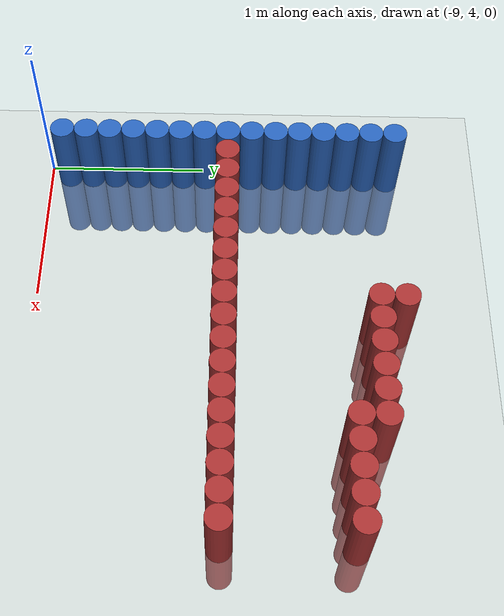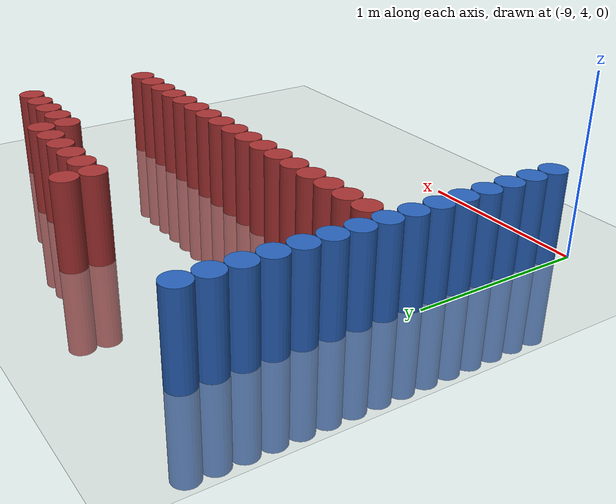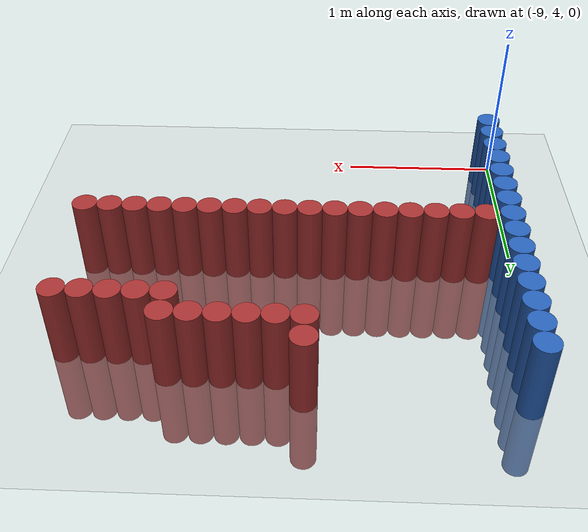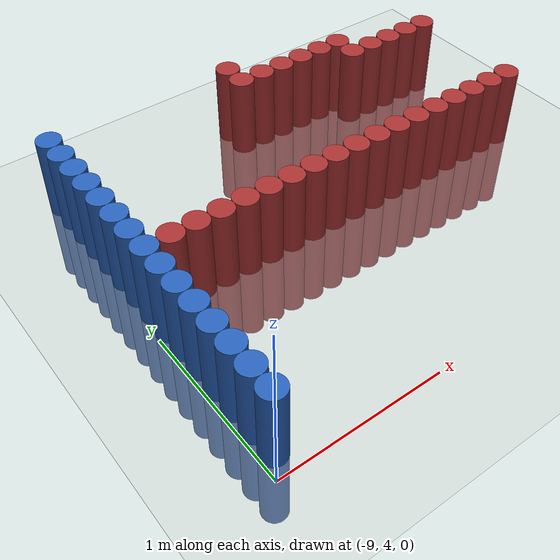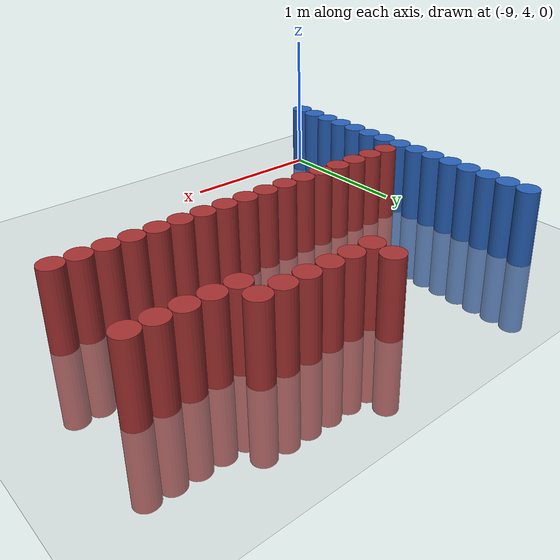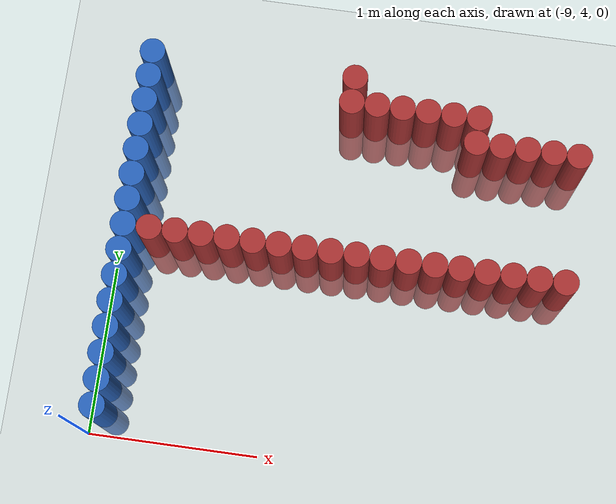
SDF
<sdf version="1.6">
 <world name="default">
  <model name="ground_plane">
   <static>1</static>
   <link name="link">
    <collision name="collision">
     <geometry><plane><normal>0 0 1</normal><size>100 100</size></plane></geometry>
     <surface><friction><ode><mu>100</mu><mu2>50</mu2></ode></friction></surface>
    </collision>
    <visual name="visual">
     <cast_shadows>0</cast_shadows>
     <geometry><plane><normal>0 0 1</normal><size>100 100</size></plane></geometry>
     <material>
      <script><uri>file://media/materials/scripts/gazebo.material</uri><name>Gazebo/Grey</name></script>
     </material>
    </visual>
   </link>
  </model>
  <model name="unit_cylinder_112">
   <static>1</static>
   <pose>-8.925000 4.125000 0.000000 0.000000 0.000000 0.000000</pose>
   <link name="link">
    <inertial>
     <mass>1</mass>
     <inertia><ixx>0.145833</ixx><ixy>0</ixy><ixz>0</ixz><iyy>0.145833</iyy><iyz>0</iyz><izz>0.125</izz></inertia>
    </inertial>
    <collision name="collision">
     <geometry><cylinder><radius>0.075000</radius><length>1</length></cylinder></geometry>
    </collision>
    <visual name="visual">
     <geometry><cylinder><radius>0.075000</radius><length>1</length></cylinder></geometry>
     <material>
      <ambient>0.152000 0.379000 0.720000 1</ambient>
      <diffuse>0.152000 0.379000 0.720000 1</diffuse>
     </material>
     <material>
      <script><name>Gazebo/Grey</name><uri>file://media/materials/scripts/gazebo.material</uri></script>
     </material>
    </visual>
   </link>
  </model>
  <model name="unit_cylinder_114">
   <static>1</static>
   <pose>-8.925000 4.275000 0.000000 0.000000 0.000000 0.000000</pose>
   <link name="link">
    <inertial>
     <mass>1</mass>
     <inertia><ixx>0.145833</ixx><ixy>0</ixy><ixz>0</ixz><iyy>0.145833</iyy><iyz>0</iyz><izz>0.125</izz></inertia>
    </inertial>
    <collision name="collision">
     <geometry><cylinder><radius>0.075000</radius><length>1</length></cylinder></geometry>
    </collision>
    <visual name="visual">
     <geometry><cylinder><radius>0.075000</radius><length>1</length></cylinder></geometry>
     <material>
      <ambient>0.152000 0.379000 0.720000 1</ambient>
      <diffuse>0.152000 0.379000 0.720000 1</diffuse>
     </material>
     <material>
      <script><name>Gazebo/Grey</name><uri>file://media/materials/scripts/gazebo.material</uri></script>
     </material>
    </visual>
   </link>
  </model>
  <model name="unit_cylinder_116">
   <static>1</static>
   <pose>-8.925000 4.425000 0.000000 0.000000 0.000000 0.000000</pose>
   <link name="link">
    <inertial>
     <mass>1</mass>
     <inertia><ixx>0.145833</ixx><ixy>0</ixy><ixz>0</ixz><iyy>0.145833</iyy><iyz>0</iyz><izz>0.125</izz></inertia>
    </inertial>
    <collision name="collision">
     <geometry><cylinder><radius>0.075000</radius><length>1</length></cylinder></geometry>
    </collision>
    <visual name="visual">
     <geometry><cylinder><radius>0.075000</radius><length>1</length></cylinder></geometry>
     <material>
      <ambient>0.152000 0.379000 0.720000 1</ambient>
      <diffuse>0.152000 0.379000 0.720000 1</diffuse>
     </material>
     <material>
      <script><name>Gazebo/Grey</name><uri>file://media/materials/scripts/gazebo.material</uri></script>
     </material>
    </visual>
   </link>
  </model>
  <model name="unit_cylinder_118">
   <static>1</static>
   <pose>-8.925000 4.575000 0.000000 0.000000 0.000000 0.000000</pose>
   <link name="link">
    <inertial>
     <mass>1</mass>
     <inertia><ixx>0.145833</ixx><ixy>0</ixy><ixz>0</ixz><iyy>0.145833</iyy><iyz>0</iyz><izz>0.125</izz></inertia>
    </inertial>
    <collision name="collision">
     <geometry><cylinder><radius>0.075000</radius><length>1</length></cylinder></geometry>
    </collision>
    <visual name="visual">
     <geometry><cylinder><radius>0.075000</radius><length>1</length></cylinder></geometry>
     <material>
      <ambient>0.152000 0.379000 0.720000 1</ambient>
      <diffuse>0.152000 0.379000 0.720000 1</diffuse>
     </material>
     <material>
      <script><name>Gazebo/Grey</name><uri>file://media/materials/scripts/gazebo.material</uri></script>
     </material>
    </visual>
   </link>
  </model>
  <model name="unit_cylinder_120">
   <static>1</static>
   <pose>-8.925000 4.725000 0.000000 0.000000 0.000000 0.000000</pose>
   <link name="link">
    <inertial>
     <mass>1</mass>
     <inertia><ixx>0.145833</ixx><ixy>0</ixy><ixz>0</ixz><iyy>0.145833</iyy><iyz>0</iyz><izz>0.125</izz></inertia>
    </inertial>
    <collision name="collision">
     <geometry><cylinder><radius>0.075000</radius><length>1</length></cylinder></geometry>
    </collision>
    <visual name="visual">
     <geometry><cylinder><radius>0.075000</radius><length>1</length></cylinder></geometry>
     <material>
      <ambient>0.152000 0.379000 0.720000 1</ambient>
      <diffuse>0.152000 0.379000 0.720000 1</diffuse>
     </material>
     <material>
      <script><name>Gazebo/Grey</name><uri>file://media/materials/scripts/gazebo.material</uri></script>
     </material>
    </visual>
   </link>
  </model>
  <model name="unit_cylinder_122">
   <static>1</static>
   <pose>-8.925000 4.875000 0.000000 0.000000 0.000000 0.000000</pose>
   <link name="link">
    <inertial>
     <mass>1</mass>
     <inertia><ixx>0.145833</ixx><ixy>0</ixy><ixz>0</ixz><iyy>0.145833</iyy><iyz>0</iyz><izz>0.125</izz></inertia>
    </inertial>
    <collision name="collision">
     <geometry><cylinder><radius>0.075000</radius><length>1</length></cylinder></geometry>
    </collision>
    <visual name="visual">
     <geometry><cylinder><radius>0.075000</radius><length>1</length></cylinder></geometry>
     <material>
      <ambient>0.152000 0.379000 0.720000 1</ambient>
      <diffuse>0.152000 0.379000 0.720000 1</diffuse>
     </material>
     <material>
      <script><name>Gazebo/Grey</name><uri>file://media/materials/scripts/gazebo.material</uri></script>
     </material>
    </visual>
   </link>
  </model>
  <model name="unit_cylinder_124">
   <static>1</static>
   <pose>-8.925000 5.025000 0.000000 0.000000 0.000000 0.000000</pose>
   <link name="link">
    <inertial>
     <mass>1</mass>
     <inertia><ixx>0.145833</ixx><ixy>0</ixy><ixz>0</ixz><iyy>0.145833</iyy><iyz>0</iyz><izz>0.125</izz></inertia>
    </inertial>
    <collision name="collision">
     <geometry><cylinder><radius>0.075000</radius><length>1</length></cylinder></geometry>
    </collision>
    <visual name="visual">
     <geometry><cylinder><radius>0.075000</radius><length>1</length></cylinder></geometry>
     <material>
      <ambient>0.152000 0.379000 0.720000 1</ambient>
      <diffuse>0.152000 0.379000 0.720000 1</diffuse>
     </material>
     <material>
      <script><name>Gazebo/Grey</name><uri>file://media/materials/scripts/gazebo.material</uri></script>
     </material>
    </visual>
   </link>
  </model>
  <model name="unit_cylinder_125">
   <static>1</static>
   <pose>-8.925000 5.175000 0.000000 0.000000 0.000000 0.000000</pose>
   <link name="link">
    <inertial>
     <mass>1</mass>
     <inertia><ixx>0.145833</ixx><ixy>0</ixy><ixz>0</ixz><iyy>0.145833</iyy><iyz>0</iyz><izz>0.125</izz></inertia>
    </inertial>
    <collision name="collision">
     <geometry><cylinder><radius>0.075000</radius><length>1</length></cylinder></geometry>
    </collision>
    <visual name="visual">
     <geometry><cylinder><radius>0.075000</radius><length>1</length></cylinder></geometry>
     <material>
      <ambient>0.152000 0.379000 0.720000 1</ambient>
      <diffuse>0.152000 0.379000 0.720000 1</diffuse>
     </material>
     <material>
      <script><name>Gazebo/Grey</name><uri>file://media/materials/scripts/gazebo.material</uri></script>
     </material>
    </visual>
   </link>
  </model>
  <model name="unit_cylinder_126">
   <static>1</static>
   <pose>-8.925000 5.325000 0.000000 0.000000 0.000000 0.000000</pose>
   <link name="link">
    <inertial>
     <mass>1</mass>
     <inertia><ixx>0.145833</ixx><ixy>0</ixy><ixz>0</ixz><iyy>0.145833</iyy><iyz>0</iyz><izz>0.125</izz></inertia>
    </inertial>
    <collision name="collision">
     <geometry><cylinder><radius>0.075000</radius><length>1</length></cylinder></geometry>
    </collision>
    <visual name="visual">
     <geometry><cylinder><radius>0.075000</radius><length>1</length></cylinder></geometry>
     <material>
      <ambient>0.152000 0.379000 0.720000 1</ambient>
      <diffuse>0.152000 0.379000 0.720000 1</diffuse>
     </material>
     <material>
      <script><name>Gazebo/Grey</name><uri>file://media/materials/scripts/gazebo.material</uri></script>
     </material>
    </visual>
   </link>
  </model>
  <model name="unit_cylinder_127">
   <static>1</static>
   <pose>-8.925000 5.475000 0.000000 0.000000 0.000000 0.000000</pose>
   <link name="link">
    <inertial>
     <mass>1</mass>
     <inertia><ixx>0.145833</ixx><ixy>0</ixy><ixz>0</ixz><iyy>0.145833</iyy><iyz>0</iyz><izz>0.125</izz></inertia>
    </inertial>
    <collision name="collision">
     <geometry><cylinder><radius>0.075000</radius><length>1</length></cylinder></geometry>
    </collision>
    <visual name="visual">
     <geometry><cylinder><radius>0.075000</radius><length>1</length></cylinder></geometry>
     <material>
      <ambient>0.152000 0.379000 0.720000 1</ambient>
      <diffuse>0.152000 0.379000 0.720000 1</diffuse>
     </material>
     <material>
      <script><name>Gazebo/Grey</name><uri>file://media/materials/scripts/gazebo.material</uri></script>
     </material>
    </visual>
   </link>
  </model>
  <model name="unit_cylinder_128">
   <static>1</static>
   <pose>-8.925000 5.625000 0.000000 0.000000 0.000000 0.000000</pose>
   <link name="link">
    <inertial>
     <mass>1</mass>
     <inertia><ixx>0.145833</ixx><ixy>0</ixy><ixz>0</ixz><iyy>0.145833</iyy><iyz>0</iyz><izz>0.125</izz></inertia>
    </inertial>
    <collision name="collision">
     <geometry><cylinder><radius>0.075000</radius><length>1</length></cylinder></geometry>
    </collision>
    <visual name="visual">
     <geometry><cylinder><radius>0.075000</radius><length>1</length></cylinder></geometry>
     <material>
      <ambient>0.152000 0.379000 0.720000 1</ambient>
      <diffuse>0.152000 0.379000 0.720000 1</diffuse>
     </material>
     <material>
      <script><name>Gazebo/Grey</name><uri>file://media/materials/scripts/gazebo.material</uri></script>
     </material>
    </visual>
   </link>
  </model>
  <model name="unit_cylinder_129">
   <static>1</static>
   <pose>-8.925000 5.775000 0.000000 0.000000 0.000000 0.000000</pose>
   <link name="link">
    <inertial>
     <mass>1</mass>
     <inertia><ixx>0.145833</ixx><ixy>0</ixy><ixz>0</ixz><iyy>0.145833</iyy><iyz>0</iyz><izz>0.125</izz></inertia>
    </inertial>
    <collision name="collision">
     <geometry><cylinder><radius>0.075000</radius><length>1</length></cylinder></geometry>
    </collision>
    <visual name="visual">
     <geometry><cylinder><radius>0.075000</radius><length>1</length></cylinder></geometry>
     <material>
      <ambient>0.152000 0.379000 0.720000 1</ambient>
      <diffuse>0.152000 0.379000 0.720000 1</diffuse>
     </material>
     <material>
      <script><name>Gazebo/Grey</name><uri>file://media/materials/scripts/gazebo.material</uri></script>
     </material>
    </visual>
   </link>
  </model>
  <model name="unit_cylinder_130">
   <static>1</static>
   <pose>-8.925000 5.925000 0.000000 0.000000 0.000000 0.000000</pose>
   <link name="link">
    <inertial>
     <mass>1</mass>
     <inertia><ixx>0.145833</ixx><ixy>0</ixy><ixz>0</ixz><iyy>0.145833</iyy><iyz>0</iyz><izz>0.125</izz></inertia>
    </inertial>
    <collision name="collision">
     <geometry><cylinder><radius>0.075000</radius><length>1</length></cylinder></geometry>
    </collision>
    <visual name="visual">
     <geometry><cylinder><radius>0.075000</radius><length>1</length></cylinder></geometry>
     <material>
      <ambient>0.152000 0.379000 0.720000 1</ambient>
      <diffuse>0.152000 0.379000 0.720000 1</diffuse>
     </material>
     <material>
      <script><name>Gazebo/Grey</name><uri>file://media/materials/scripts/gazebo.material</uri></script>
     </material>
    </visual>
   </link>
  </model>
  <model name="unit_cylinder_131">
   <static>1</static>
   <pose>-8.925000 6.075000 0.000000 0.000000 0.000000 0.000000</pose>
   <link name="link">
    <inertial>
     <mass>1</mass>
     <inertia><ixx>0.145833</ixx><ixy>0</ixy><ixz>0</ixz><iyy>0.145833</iyy><iyz>0</iyz><izz>0.125</izz></inertia>
    </inertial>
    <collision name="collision">
     <geometry><cylinder><radius>0.075000</radius><length>1</length></cylinder></geometry>
    </collision>
    <visual name="visual">
     <geometry><cylinder><radius>0.075000</radius><length>1</length></cylinder></geometry>
     <material>
      <ambient>0.152000 0.379000 0.720000 1</ambient>
      <diffuse>0.152000 0.379000 0.720000 1</diffuse>
     </material>
     <material>
      <script><name>Gazebo/Grey</name><uri>file://media/materials/scripts/gazebo.material</uri></script>
     </material>
    </visual>
   </link>
  </model>
  <model name="unit_cylinder_132">
   <static>1</static>
   <pose>-8.925000 6.225000 0.000000 0.000000 0.000000 0.000000</pose>
   <link name="link">
    <inertial>
     <mass>1</mass>
     <inertia><ixx>0.145833</ixx><ixy>0</ixy><ixz>0</ixz><iyy>0.145833</iyy><iyz>0</iyz><izz>0.125</izz></inertia>
    </inertial>
    <collision name="collision">
     <geometry><cylinder><radius>0.075000</radius><length>1</length></cylinder></geometry>
    </collision>
    <visual name="visual">
     <geometry><cylinder><radius>0.075000</radius><length>1</length></cylinder></geometry>
     <material>
      <ambient>0.152000 0.379000 0.720000 1</ambient>
      <diffuse>0.152000 0.379000 0.720000 1</diffuse>
     </material>
     <material>
      <script><name>Gazebo/Grey</name><uri>file://media/materials/scripts/gazebo.material</uri></script>
     </material>
    </visual>
   </link>
  </model>
  <model name="unit_cylinder_155">
   <static>1</static>
   <pose>-8.775000 5.175000 0.000000 0.000000 0.000000 0.000000</pose>
   <link name="link">
    <inertial>
     <mass>1</mass>
     <inertia><ixx>0.145833</ixx><ixy>0</ixy><ixz>0</ixz><iyy>0.145833</iyy><iyz>0</iyz><izz>0.125</izz></inertia>
    </inertial>
    <collision name="collision">
     <geometry><cylinder><radius>0.075000</radius><length>1</length></cylinder></geometry>
    </collision>
    <visual name="visual">
     <geometry><cylinder><radius>0.075000</radius><length>1</length></cylinder></geometry>
     <material>
      <ambient>0.648000 0.192000 0.192000 1</ambient>
      <diffuse>0.648000 0.192000 0.192000 1</diffuse>
     </material>
     <material>
      <script><name>Gazebo/Grey</name><uri>file://media/materials/scripts/gazebo.material</uri></script>
     </material>
    </visual>
   </link>
  </model>
  <model name="unit_cylinder_157">
   <static>1</static>
   <pose>-8.625000 5.175000 0.000000 0.000000 0.000000 0.000000</pose>
   <link name="link">
    <inertial>
     <mass>1</mass>
     <inertia><ixx>0.145833</ixx><ixy>0</ixy><ixz>0</ixz><iyy>0.145833</iyy><iyz>0</iyz><izz>0.125</izz></inertia>
    </inertial>
    <collision name="collision">
     <geometry><cylinder><radius>0.075000</radius><length>1</length></cylinder></geometry>
    </collision>
    <visual name="visual">
     <geometry><cylinder><radius>0.075000</radius><length>1</length></cylinder></geometry>
     <material>
      <ambient>0.648000 0.192000 0.192000 1</ambient>
      <diffuse>0.648000 0.192000 0.192000 1</diffuse>
     </material>
     <material>
      <script><name>Gazebo/Grey</name><uri>file://media/materials/scripts/gazebo.material</uri></script>
     </material>
    </visual>
   </link>
  </model>
  <model name="unit_cylinder_159">
   <static>1</static>
   <pose>-8.475000 5.175000 0.000000 0.000000 0.000000 0.000000</pose>
   <link name="link">
    <inertial>
     <mass>1</mass>
     <inertia><ixx>0.145833</ixx><ixy>0</ixy><ixz>0</ixz><iyy>0.145833</iyy><iyz>0</iyz><izz>0.125</izz></inertia>
    </inertial>
    <collision name="collision">
     <geometry><cylinder><radius>0.075000</radius><length>1</length></cylinder></geometry>
    </collision>
    <visual name="visual">
     <geometry><cylinder><radius>0.075000</radius><length>1</length></cylinder></geometry>
     <material>
      <ambient>0.648000 0.192000 0.192000 1</ambient>
      <diffuse>0.648000 0.192000 0.192000 1</diffuse>
     </material>
     <material>
      <script><name>Gazebo/Grey</name><uri>file://media/materials/scripts/gazebo.material</uri></script>
     </material>
    </visual>
   </link>
  </model>
  <model name="unit_cylinder_161">
   <static>1</static>
   <pose>-8.325000 5.175000 0.000000 0.000000 0.000000 0.000000</pose>
   <link name="link">
    <inertial>
     <mass>1</mass>
     <inertia><ixx>0.145833</ixx><ixy>0</ixy><ixz>0</ixz><iyy>0.145833</iyy><iyz>0</iyz><izz>0.125</izz></inertia>
    </inertial>
    <collision name="collision">
     <geometry><cylinder><radius>0.075000</radius><length>1</length></cylinder></geometry>
    </collision>
    <visual name="visual">
     <geometry><cylinder><radius>0.075000</radius><length>1</length></cylinder></geometry>
     <material>
      <ambient>0.648000 0.192000 0.192000 1</ambient>
      <diffuse>0.648000 0.192000 0.192000 1</diffuse>
     </material>
     <material>
      <script><name>Gazebo/Grey</name><uri>file://media/materials/scripts/gazebo.material</uri></script>
     </material>
    </visual>
   </link>
  </model>
  <model name="unit_cylinder_173">
   <static>1</static>
   <pose>-8.175000 5.175000 0.000000 0.000000 0.000000 0.000000</pose>
   <link name="link">
    <inertial>
     <mass>1</mass>
     <inertia><ixx>0.145833</ixx><ixy>0</ixy><ixz>0</ixz><iyy>0.145833</iyy><iyz>0</iyz><izz>0.125</izz></inertia>
    </inertial>
    <collision name="collision">
     <geometry><cylinder><radius>0.075000</radius><length>1</length></cylinder></geometry>
    </collision>
    <visual name="visual">
     <geometry><cylinder><radius>0.075000</radius><length>1</length></cylinder></geometry>
     <material>
      <ambient>0.648000 0.192000 0.192000 1</ambient>
      <diffuse>0.648000 0.192000 0.192000 1</diffuse>
     </material>
     <material>
      <script><name>Gazebo/Grey</name><uri>file://media/materials/scripts/gazebo.material</uri></script>
     </material>
    </visual>
   </link>
  </model>
  <model name="unit_cylinder_185">
   <static>1</static>
   <pose>-8.025000 5.175000 0.000000 0.000000 0.000000 0.000000</pose>
   <link name="link">
    <inertial>
     <mass>1</mass>
     <inertia><ixx>0.145833</ixx><ixy>0</ixy><ixz>0</ixz><iyy>0.145833</iyy><iyz>0</iyz><izz>0.125</izz></inertia>
    </inertial>
    <collision name="collision">
     <geometry><cylinder><radius>0.075000</radius><length>1</length></cylinder></geometry>
    </collision>
    <visual name="visual">
     <geometry><cylinder><radius>0.075000</radius><length>1</length></cylinder></geometry>
     <material>
      <ambient>0.648000 0.192000 0.192000 1</ambient>
      <diffuse>0.648000 0.192000 0.192000 1</diffuse>
     </material>
     <material>
      <script><name>Gazebo/Grey</name><uri>file://media/materials/scripts/gazebo.material</uri></script>
     </material>
    </visual>
   </link>
  </model>
  <model name="unit_cylinder_187">
   <static>1</static>
   <pose>-7.875000 5.175000 0.000000 0.000000 0.000000 0.000000</pose>
   <link name="link">
    <inertial>
     <mass>1</mass>
     <inertia><ixx>0.145833</ixx><ixy>0</ixy><ixz>0</ixz><iyy>0.145833</iyy><iyz>0</iyz><izz>0.125</izz></inertia>
    </inertial>
    <collision name="collision">
     <geometry><cylinder><radius>0.075000</radius><length>1</length></cylinder></geometry>
    </collision>
    <visual name="visual">
     <geometry><cylinder><radius>0.075000</radius><length>1</length></cylinder></geometry>
     <material>
      <ambient>0.648000 0.192000 0.192000 1</ambient>
      <diffuse>0.648000 0.192000 0.192000 1</diffuse>
     </material>
     <material>
      <script><name>Gazebo/Grey</name><uri>file://media/materials/scripts/gazebo.material</uri></script>
     </material>
    </visual>
   </link>
  </model>
  <model name="unit_cylinder_190">
   <static>1</static>
   <pose>-7.725000 5.175000 0.000000 0.000000 0.000000 0.000000</pose>
   <link name="link">
    <inertial>
     <mass>1</mass>
     <inertia><ixx>0.145833</ixx><ixy>0</ixy><ixz>0</ixz><iyy>0.145833</iyy><iyz>0</iyz><izz>0.125</izz></inertia>
    </inertial>
    <collision name="collision">
     <geometry><cylinder><radius>0.075000</radius><length>1</length></cylinder></geometry>
    </collision>
    <visual name="visual">
     <geometry><cylinder><radius>0.075000</radius><length>1</length></cylinder></geometry>
     <material>
      <ambient>0.648000 0.192000 0.192000 1</ambient>
      <diffuse>0.648000 0.192000 0.192000 1</diffuse>
     </material>
     <material>
      <script><name>Gazebo/Grey</name><uri>file://media/materials/scripts/gazebo.material</uri></script>
     </material>
    </visual>
   </link>
  </model>
  <model name="unit_cylinder_191">
   <static>1</static>
   <pose>-7.725000 6.075000 0.000000 0.000000 0.000000 0.000000</pose>
   <link name="link">
    <inertial>
     <mass>1</mass>
     <inertia><ixx>0.145833</ixx><ixy>0</ixy><ixz>0</ixz><iyy>0.145833</iyy><iyz>0</iyz><izz>0.125</izz></inertia>
    </inertial>
    <collision name="collision">
     <geometry><cylinder><radius>0.075000</radius><length>1</length></cylinder></geometry>
    </collision>
    <visual name="visual">
     <geometry><cylinder><radius>0.075000</radius><length>1</length></cylinder></geometry>
     <material>
      <ambient>0.648000 0.192000 0.192000 1</ambient>
      <diffuse>0.648000 0.192000 0.192000 1</diffuse>
     </material>
     <material>
      <script><name>Gazebo/Grey</name><uri>file://media/materials/scripts/gazebo.material</uri></script>
     </material>
    </visual>
   </link>
  </model>
  <model name="unit_cylinder_192">
   <static>1</static>
   <pose>-7.725000 6.225000 0.000000 0.000000 0.000000 0.000000</pose>
   <link name="link">
    <inertial>
     <mass>1</mass>
     <inertia><ixx>0.145833</ixx><ixy>0</ixy><ixz>0</ixz><iyy>0.145833</iyy><iyz>0</iyz><izz>0.125</izz></inertia>
    </inertial>
    <collision name="collision">
     <geometry><cylinder><radius>0.075000</radius><length>1</length></cylinder></geometry>
    </collision>
    <visual name="visual">
     <geometry><cylinder><radius>0.075000</radius><length>1</length></cylinder></geometry>
     <material>
      <ambient>0.648000 0.192000 0.192000 1</ambient>
      <diffuse>0.648000 0.192000 0.192000 1</diffuse>
     </material>
     <material>
      <script><name>Gazebo/Grey</name><uri>file://media/materials/scripts/gazebo.material</uri></script>
     </material>
    </visual>
   </link>
  </model>
  <model name="unit_cylinder_194">
   <static>1</static>
   <pose>-7.575000 5.175000 0.000000 0.000000 0.000000 0.000000</pose>
   <link name="link">
    <inertial>
     <mass>1</mass>
     <inertia><ixx>0.145833</ixx><ixy>0</ixy><ixz>0</ixz><iyy>0.145833</iyy><iyz>0</iyz><izz>0.125</izz></inertia>
    </inertial>
    <collision name="collision">
     <geometry><cylinder><radius>0.075000</radius><length>1</length></cylinder></geometry>
    </collision>
    <visual name="visual">
     <geometry><cylinder><radius>0.075000</radius><length>1</length></cylinder></geometry>
     <material>
      <ambient>0.648000 0.192000 0.192000 1</ambient>
      <diffuse>0.648000 0.192000 0.192000 1</diffuse>
     </material>
     <material>
      <script><name>Gazebo/Grey</name><uri>file://media/materials/scripts/gazebo.material</uri></script>
     </material>
    </visual>
   </link>
  </model>
  <model name="unit_cylinder_195">
   <static>1</static>
   <pose>-7.575000 6.075000 0.000000 0.000000 0.000000 0.000000</pose>
   <link name="link">
    <inertial>
     <mass>1</mass>
     <inertia><ixx>0.145833</ixx><ixy>0</ixy><ixz>0</ixz><iyy>0.145833</iyy><iyz>0</iyz><izz>0.125</izz></inertia>
    </inertial>
    <collision name="collision">
     <geometry><cylinder><radius>0.075000</radius><length>1</length></cylinder></geometry>
    </collision>
    <visual name="visual">
     <geometry><cylinder><radius>0.075000</radius><length>1</length></cylinder></geometry>
     <material>
      <ambient>0.648000 0.192000 0.192000 1</ambient>
      <diffuse>0.648000 0.192000 0.192000 1</diffuse>
     </material>
     <material>
      <script><name>Gazebo/Grey</name><uri>file://media/materials/scripts/gazebo.material</uri></script>
     </material>
    </visual>
   </link>
  </model>
  <model name="unit_cylinder_196">
   <static>1</static>
   <pose>-7.425000 5.175000 0.000000 0.000000 0.000000 0.000000</pose>
   <link name="link">
    <inertial>
     <mass>1</mass>
     <inertia><ixx>0.145833</ixx><ixy>0</ixy><ixz>0</ixz><iyy>0.145833</iyy><iyz>0</iyz><izz>0.125</izz></inertia>
    </inertial>
    <collision name="collision">
     <geometry><cylinder><radius>0.075000</radius><length>1</length></cylinder></geometry>
    </collision>
    <visual name="visual">
     <geometry><cylinder><radius>0.075000</radius><length>1</length></cylinder></geometry>
     <material>
      <ambient>0.648000 0.192000 0.192000 1</ambient>
      <diffuse>0.648000 0.192000 0.192000 1</diffuse>
     </material>
     <material>
      <script><name>Gazebo/Grey</name><uri>file://media/materials/scripts/gazebo.material</uri></script>
     </material>
    </visual>
   </link>
  </model>
  <model name="unit_cylinder_197">
   <static>1</static>
   <pose>-7.425000 6.075000 0.000000 0.000000 0.000000 0.000000</pose>
   <link name="link">
    <inertial>
     <mass>1</mass>
     <inertia><ixx>0.145833</ixx><ixy>0</ixy><ixz>0</ixz><iyy>0.145833</iyy><iyz>0</iyz><izz>0.125</izz></inertia>
    </inertial>
    <collision name="collision">
     <geometry><cylinder><radius>0.075000</radius><length>1</length></cylinder></geometry>
    </collision>
    <visual name="visual">
     <geometry><cylinder><radius>0.075000</radius><length>1</length></cylinder></geometry>
     <material>
      <ambient>0.648000 0.192000 0.192000 1</ambient>
      <diffuse>0.648000 0.192000 0.192000 1</diffuse>
     </material>
     <material>
      <script><name>Gazebo/Grey</name><uri>file://media/materials/scripts/gazebo.material</uri></script>
     </material>
    </visual>
   </link>
  </model>
  <model name="unit_cylinder_198">
   <static>1</static>
   <pose>-7.275000 5.175000 0.000000 0.000000 0.000000 0.000000</pose>
   <link name="link">
    <inertial>
     <mass>1</mass>
     <inertia><ixx>0.145833</ixx><ixy>0</ixy><ixz>0</ixz><iyy>0.145833</iyy><iyz>0</iyz><izz>0.125</izz></inertia>
    </inertial>
    <collision name="collision">
     <geometry><cylinder><radius>0.075000</radius><length>1</length></cylinder></geometry>
    </collision>
    <visual name="visual">
     <geometry><cylinder><radius>0.075000</radius><length>1</length></cylinder></geometry>
     <material>
      <ambient>0.648000 0.192000 0.192000 1</ambient>
      <diffuse>0.648000 0.192000 0.192000 1</diffuse>
     </material>
     <material>
      <script><name>Gazebo/Grey</name><uri>file://media/materials/scripts/gazebo.material</uri></script>
     </material>
    </visual>
   </link>
  </model>
  <model name="unit_cylinder_199">
   <static>1</static>
   <pose>-7.275000 6.075000 0.000000 0.000000 0.000000 0.000000</pose>
   <link name="link">
    <inertial>
     <mass>1</mass>
     <inertia><ixx>0.145833</ixx><ixy>0</ixy><ixz>0</ixz><iyy>0.145833</iyy><iyz>0</iyz><izz>0.125</izz></inertia>
    </inertial>
    <collision name="collision">
     <geometry><cylinder><radius>0.075000</radius><length>1</length></cylinder></geometry>
    </collision>
    <visual name="visual">
     <geometry><cylinder><radius>0.075000</radius><length>1</length></cylinder></geometry>
     <material>
      <ambient>0.648000 0.192000 0.192000 1</ambient>
      <diffuse>0.648000 0.192000 0.192000 1</diffuse>
     </material>
     <material>
      <script><name>Gazebo/Grey</name><uri>file://media/materials/scripts/gazebo.material</uri></script>
     </material>
    </visual>
   </link>
  </model>
  <model name="unit_cylinder_200">
   <static>1</static>
   <pose>-7.125000 5.175000 0.000000 0.000000 0.000000 0.000000</pose>
   <link name="link">
    <inertial>
     <mass>1</mass>
     <inertia><ixx>0.145833</ixx><ixy>0</ixy><ixz>0</ixz><iyy>0.145833</iyy><iyz>0</iyz><izz>0.125</izz></inertia>
    </inertial>
    <collision name="collision">
     <geometry><cylinder><radius>0.075000</radius><length>1</length></cylinder></geometry>
    </collision>
    <visual name="visual">
     <geometry><cylinder><radius>0.075000</radius><length>1</length></cylinder></geometry>
     <material>
      <ambient>0.648000 0.192000 0.192000 1</ambient>
      <diffuse>0.648000 0.192000 0.192000 1</diffuse>
     </material>
     <material>
      <script><name>Gazebo/Grey</name><uri>file://media/materials/scripts/gazebo.material</uri></script>
     </material>
    </visual>
   </link>
  </model>
  <model name="unit_cylinder_201">
   <static>1</static>
   <pose>-7.125000 6.075000 0.000000 0.000000 0.000000 0.000000</pose>
   <link name="link">
    <inertial>
     <mass>1</mass>
     <inertia><ixx>0.145833</ixx><ixy>0</ixy><ixz>0</ixz><iyy>0.145833</iyy><iyz>0</iyz><izz>0.125</izz></inertia>
    </inertial>
    <collision name="collision">
     <geometry><cylinder><radius>0.075000</radius><length>1</length></cylinder></geometry>
    </collision>
    <visual name="visual">
     <geometry><cylinder><radius>0.075000</radius><length>1</length></cylinder></geometry>
     <material>
      <ambient>0.648000 0.192000 0.192000 1</ambient>
      <diffuse>0.648000 0.192000 0.192000 1</diffuse>
     </material>
     <material>
      <script><name>Gazebo/Grey</name><uri>file://media/materials/scripts/gazebo.material</uri></script>
     </material>
    </visual>
   </link>
  </model>
  <model name="unit_cylinder_202">
   <static>1</static>
   <pose>-6.975000 5.175000 0.000000 0.000000 0.000000 0.000000</pose>
   <link name="link">
    <inertial>
     <mass>1</mass>
     <inertia><ixx>0.145833</ixx><ixy>0</ixy><ixz>0</ixz><iyy>0.145833</iyy><iyz>0</iyz><izz>0.125</izz></inertia>
    </inertial>
    <collision name="collision">
     <geometry><cylinder><radius>0.075000</radius><length>1</length></cylinder></geometry>
    </collision>
    <visual name="visual">
     <geometry><cylinder><radius>0.075000</radius><length>1</length></cylinder></geometry>
     <material>
      <ambient>0.648000 0.192000 0.192000 1</ambient>
      <diffuse>0.648000 0.192000 0.192000 1</diffuse>
     </material>
     <material>
      <script><name>Gazebo/Grey</name><uri>file://media/materials/scripts/gazebo.material</uri></script>
     </material>
    </visual>
   </link>
  </model>
  <model name="unit_cylinder_203">
   <static>1</static>
   <pose>-6.975000 5.925000 0.000000 0.000000 0.000000 0.000000</pose>
   <link name="link">
    <inertial>
     <mass>1</mass>
     <inertia><ixx>0.145833</ixx><ixy>0</ixy><ixz>0</ixz><iyy>0.145833</iyy><iyz>0</iyz><izz>0.125</izz></inertia>
    </inertial>
    <collision name="collision">
     <geometry><cylinder><radius>0.075000</radius><length>1</length></cylinder></geometry>
    </collision>
    <visual name="visual">
     <geometry><cylinder><radius>0.075000</radius><length>1</length></cylinder></geometry>
     <material>
      <ambient>0.648000 0.192000 0.192000 1</ambient>
      <diffuse>0.648000 0.192000 0.192000 1</diffuse>
     </material>
     <material>
      <script><name>Gazebo/Grey</name><uri>file://media/materials/scripts/gazebo.material</uri></script>
     </material>
    </visual>
   </link>
  </model>
  <model name="unit_cylinder_204">
   <static>1</static>
   <pose>-6.975000 6.075000 0.000000 0.000000 0.000000 0.000000</pose>
   <link name="link">
    <inertial>
     <mass>1</mass>
     <inertia><ixx>0.145833</ixx><ixy>0</ixy><ixz>0</ixz><iyy>0.145833</iyy><iyz>0</iyz><izz>0.125</izz></inertia>
    </inertial>
    <collision name="collision">
     <geometry><cylinder><radius>0.075000</radius><length>1</length></cylinder></geometry>
    </collision>
    <visual name="visual">
     <geometry><cylinder><radius>0.075000</radius><length>1</length></cylinder></geometry>
     <material>
      <ambient>0.648000 0.192000 0.192000 1</ambient>
      <diffuse>0.648000 0.192000 0.192000 1</diffuse>
     </material>
     <material>
      <script><name>Gazebo/Grey</name><uri>file://media/materials/scripts/gazebo.material</uri></script>
     </material>
    </visual>
   </link>
  </model>
  <model name="unit_cylinder_207">
   <static>1</static>
   <pose>-6.825000 5.175000 0.000000 0.000000 0.000000 0.000000</pose>
   <link name="link">
    <inertial>
     <mass>1</mass>
     <inertia><ixx>0.145833</ixx><ixy>0</ixy><ixz>0</ixz><iyy>0.145833</iyy><iyz>0</iyz><izz>0.125</izz></inertia>
    </inertial>
    <collision name="collision">
     <geometry><cylinder><radius>0.075000</radius><length>1</length></cylinder></geometry>
    </collision>
    <visual name="visual">
     <geometry><cylinder><radius>0.075000</radius><length>1</length></cylinder></geometry>
     <material>
      <ambient>0.648000 0.192000 0.192000 1</ambient>
      <diffuse>0.648000 0.192000 0.192000 1</diffuse>
     </material>
     <material>
      <script><name>Gazebo/Grey</name><uri>file://media/materials/scripts/gazebo.material</uri></script>
     </material>
    </visual>
   </link>
  </model>
  <model name="unit_cylinder_208">
   <static>1</static>
   <pose>-6.825000 5.925000 0.000000 0.000000 0.000000 0.000000</pose>
   <link name="link">
    <inertial>
     <mass>1</mass>
     <inertia><ixx>0.145833</ixx><ixy>0</ixy><ixz>0</ixz><iyy>0.145833</iyy><iyz>0</iyz><izz>0.125</izz></inertia>
    </inertial>
    <collision name="collision">
     <geometry><cylinder><radius>0.075000</radius><length>1</length></cylinder></geometry>
    </collision>
    <visual name="visual">
     <geometry><cylinder><radius>0.075000</radius><length>1</length></cylinder></geometry>
     <material>
      <ambient>0.648000 0.192000 0.192000 1</ambient>
      <diffuse>0.648000 0.192000 0.192000 1</diffuse>
     </material>
     <material>
      <script><name>Gazebo/Grey</name><uri>file://media/materials/scripts/gazebo.material</uri></script>
     </material>
    </visual>
   </link>
  </model>
  <model name="unit_cylinder_216">
   <static>1</static>
   <pose>-6.675000 5.175000 0.000000 0.000000 0.000000 0.000000</pose>
   <link name="link">
    <inertial>
     <mass>1</mass>
     <inertia><ixx>0.145833</ixx><ixy>0</ixy><ixz>0</ixz><iyy>0.145833</iyy><iyz>0</iyz><izz>0.125</izz></inertia>
    </inertial>
    <collision name="collision">
     <geometry><cylinder><radius>0.075000</radius><length>1</length></cylinder></geometry>
    </collision>
    <visual name="visual">
     <geometry><cylinder><radius>0.075000</radius><length>1</length></cylinder></geometry>
     <material>
      <ambient>0.648000 0.192000 0.192000 1</ambient>
      <diffuse>0.648000 0.192000 0.192000 1</diffuse>
     </material>
     <material>
      <script><name>Gazebo/Grey</name><uri>file://media/materials/scripts/gazebo.material</uri></script>
     </material>
    </visual>
   </link>
  </model>
  <model name="unit_cylinder_217">
   <static>1</static>
   <pose>-6.675000 5.925000 0.000000 0.000000 0.000000 0.000000</pose>
   <link name="link">
    <inertial>
     <mass>1</mass>
     <inertia><ixx>0.145833</ixx><ixy>0</ixy><ixz>0</ixz><iyy>0.145833</iyy><iyz>0</iyz><izz>0.125</izz></inertia>
    </inertial>
    <collision name="collision">
     <geometry><cylinder><radius>0.075000</radius><length>1</length></cylinder></geometry>
    </collision>
    <visual name="visual">
     <geometry><cylinder><radius>0.075000</radius><length>1</length></cylinder></geometry>
     <material>
      <ambient>0.648000 0.192000 0.192000 1</ambient>
      <diffuse>0.648000 0.192000 0.192000 1</diffuse>
     </material>
     <material>
      <script><name>Gazebo/Grey</name><uri>file://media/materials/scripts/gazebo.material</uri></script>
     </material>
    </visual>
   </link>
  </model>
  <model name="unit_cylinder_224">
   <static>1</static>
   <pose>-6.525000 5.175000 0.000000 0.000000 0.000000 0.000000</pose>
   <link name="link">
    <inertial>
     <mass>1</mass>
     <inertia><ixx>0.145833</ixx><ixy>0</ixy><ixz>0</ixz><iyy>0.145833</iyy><iyz>0</iyz><izz>0.125</izz></inertia>
    </inertial>
    <collision name="collision">
     <geometry><cylinder><radius>0.075000</radius><length>1</length></cylinder></geometry>
    </collision>
    <visual name="visual">
     <geometry><cylinder><radius>0.075000</radius><length>1</length></cylinder></geometry>
     <material>
      <ambient>0.648000 0.192000 0.192000 1</ambient>
      <diffuse>0.648000 0.192000 0.192000 1</diffuse>
     </material>
     <material>
      <script><name>Gazebo/Grey</name><uri>file://media/materials/scripts/gazebo.material</uri></script>
     </material>
    </visual>
   </link>
  </model>
  <model name="unit_cylinder_225">
   <static>1</static>
   <pose>-6.525000 5.925000 0.000000 0.000000 0.000000 0.000000</pose>
   <link name="link">
    <inertial>
     <mass>1</mass>
     <inertia><ixx>0.145833</ixx><ixy>0</ixy><ixz>0</ixz><iyy>0.145833</iyy><iyz>0</iyz><izz>0.125</izz></inertia>
    </inertial>
    <collision name="collision">
     <geometry><cylinder><radius>0.075000</radius><length>1</length></cylinder></geometry>
    </collision>
    <visual name="visual">
     <geometry><cylinder><radius>0.075000</radius><length>1</length></cylinder></geometry>
     <material>
      <ambient>0.648000 0.192000 0.192000 1</ambient>
      <diffuse>0.648000 0.192000 0.192000 1</diffuse>
     </material>
     <material>
      <script><name>Gazebo/Grey</name><uri>file://media/materials/scripts/gazebo.material</uri></script>
     </material>
    </visual>
   </link>
  </model>
  <model name="unit_cylinder_231">
   <static>1</static>
   <pose>-6.375000 5.175000 0.000000 0.000000 0.000000 0.000000</pose>
   <link name="link">
    <inertial>
     <mass>1</mass>
     <inertia><ixx>0.145833</ixx><ixy>0</ixy><ixz>0</ixz><iyy>0.145833</iyy><iyz>0</iyz><izz>0.125</izz></inertia>
    </inertial>
    <collision name="collision">
     <geometry><cylinder><radius>0.075000</radius><length>1</length></cylinder></geometry>
    </collision>
    <visual name="visual">
     <geometry><cylinder><radius>0.075000</radius><length>1</length></cylinder></geometry>
     <material>
      <ambient>0.648000 0.192000 0.192000 1</ambient>
      <diffuse>0.648000 0.192000 0.192000 1</diffuse>
     </material>
     <material>
      <script><name>Gazebo/Grey</name><uri>file://media/materials/scripts/gazebo.material</uri></script>
     </material>
    </visual>
   </link>
  </model>
  <model name="unit_cylinder_232">
   <static>1</static>
   <pose>-6.375000 5.925000 0.000000 0.000000 0.000000 0.000000</pose>
   <link name="link">
    <inertial>
     <mass>1</mass>
     <inertia><ixx>0.145833</ixx><ixy>0</ixy><ixz>0</ixz><iyy>0.145833</iyy><iyz>0</iyz><izz>0.125</izz></inertia>
    </inertial>
    <collision name="collision">
     <geometry><cylinder><radius>0.075000</radius><length>1</length></cylinder></geometry>
    </collision>
    <visual name="visual">
     <geometry><cylinder><radius>0.075000</radius><length>1</length></cylinder></geometry>
     <material>
      <ambient>0.648000 0.192000 0.192000 1</ambient>
      <diffuse>0.648000 0.192000 0.192000 1</diffuse>
     </material>
     <material>
      <script><name>Gazebo/Grey</name><uri>file://media/materials/scripts/gazebo.material</uri></script>
     </material>
    </visual>
   </link>
  </model>
 </world>
</sdf>
